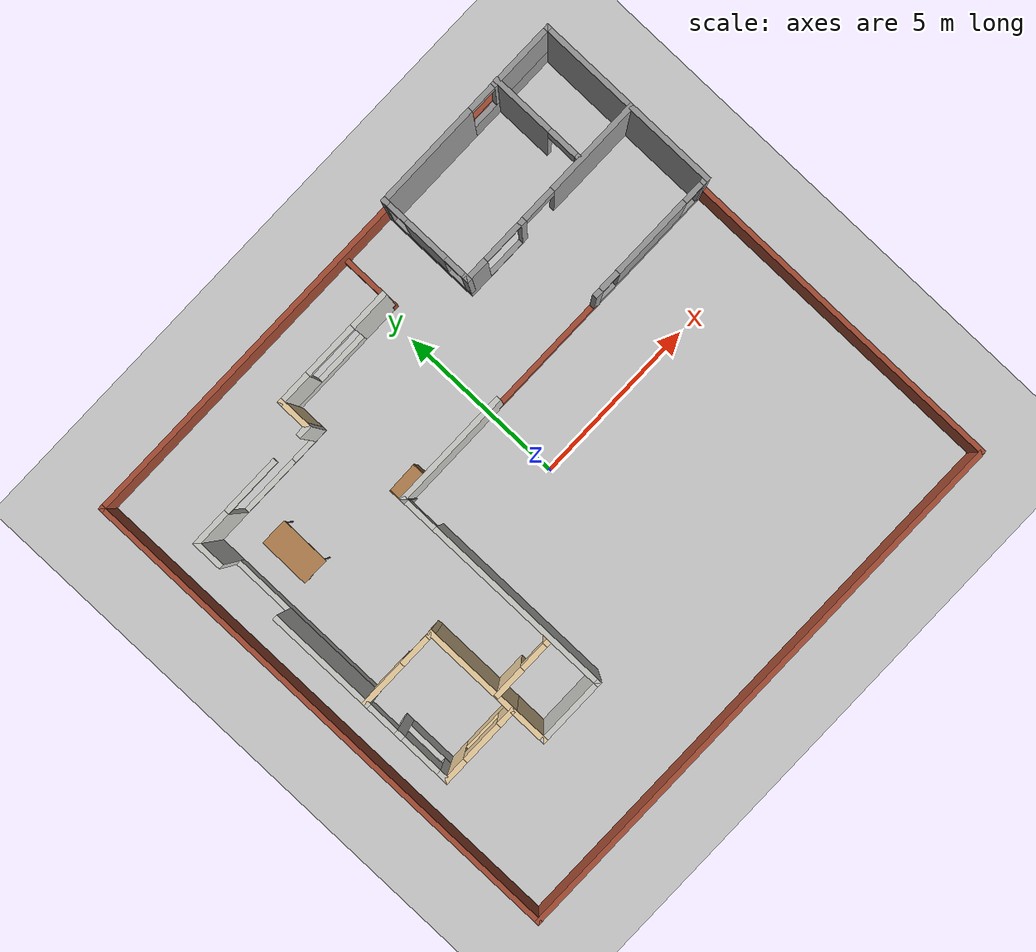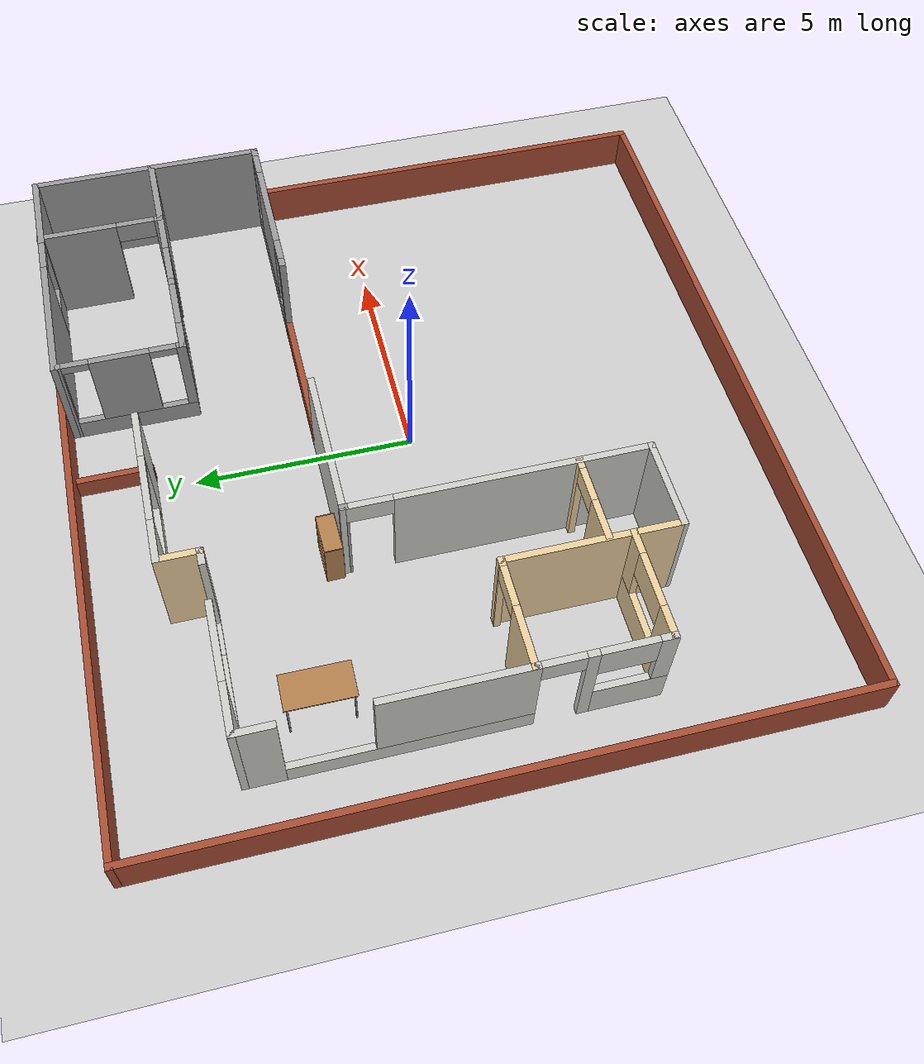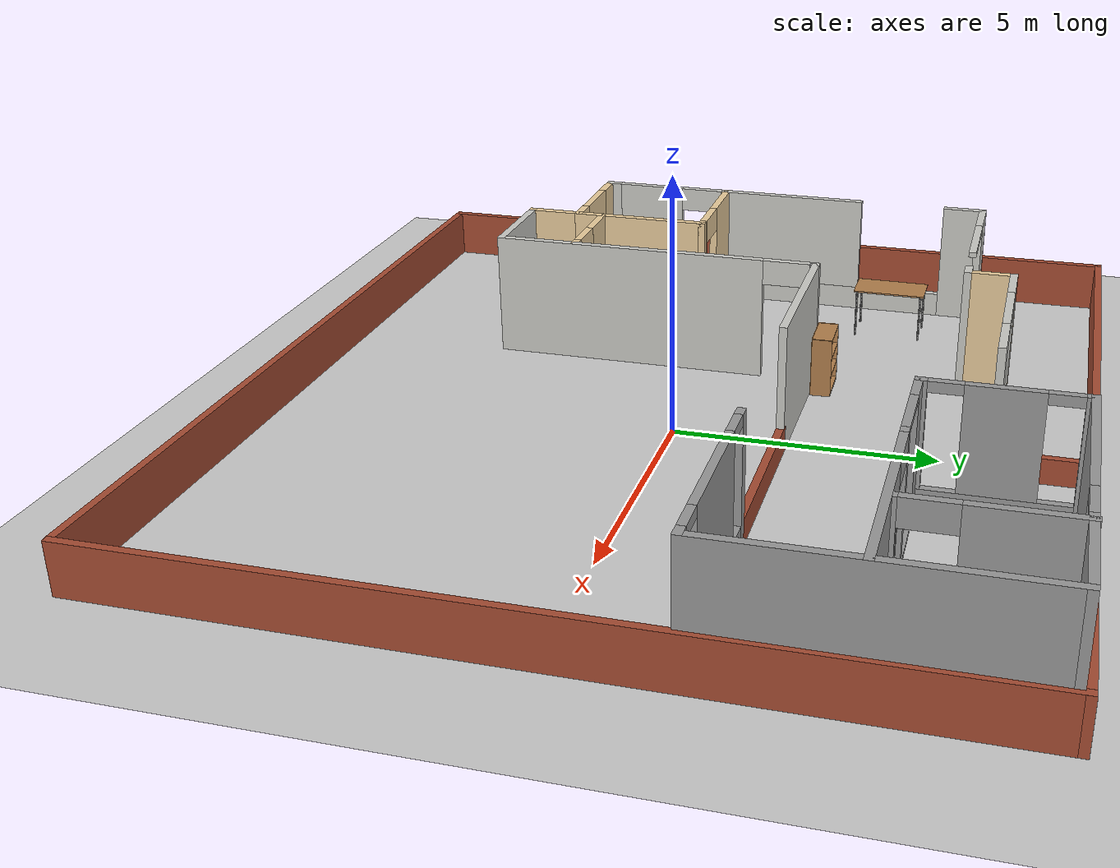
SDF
<sdf version="1.6">
 <world name="default">
  <model name="ground_plane">
   <static>1</static>
   <link name="link">
    <collision name="collision">
     <geometry><plane><normal>0 0 1</normal><size>100 100</size></plane></geometry>
     <surface>
      <contact><collide_bitmask>65535</collide_bitmask></contact>
      <friction><ode><mu>100</mu><mu2>50</mu2></ode></friction>
     </surface>
    </collision>
    <visual name="visual">
     <cast_shadows>0</cast_shadows>
     <geometry><plane><normal>0 0 1</normal><size>100 100</size></plane></geometry>
     <material>
      <script><uri>file://media/materials/scripts/gazebo.material</uri><name>Gazebo/Grey</name></script>
     </material>
    </visual>
   </link>
  </model>
  <model name="pongrut_house">
   <pose>-0.329079 -0.04 0 0 -0 0</pose>
   <link name="Wall_0">
    <collision name="Wall_0_Collision">
     <geometry><box><size>16.7231 0.15 1</size></box></geometry>
     <pose>0 0 0.5 0 -0 0</pose>
    </collision>
    <visual name="Wall_0_Visual">
     <pose>0 0 0.5 0 -0 0</pose>
     <geometry><box><size>16.7231 0.15 1</size></box></geometry>
     <material>
      <script><uri>file://media/materials/scripts/gazebo.material</uri><name>Gazebo/Bricks</name></script>
      <ambient>1 1 1 1</ambient>
     </material>
     <meta><layer>0</layer></meta>
    </visual>
    <pose>0 7.70141 0 0 -0 0</pose>
   </link>
   <link name="Wall_18">
    <pose>-1.19963 5.9806 0 0 -0 3.14149</pose>
    <visual name="Wall_18_Visual_0">
     <pose>-1.31206 0 1.25 0 -0 0</pose>
     <geometry><box><size>1.16383 0.15 2.5</size></box></geometry>
     <material>
      <script><uri>file://media/materials/scripts/gazebo.material</uri><name>Gazebo/CeilingTiled</name></script>
      <ambient>0.921569 0.807843 0.615686 1</ambient>
     </material>
     <meta><layer>0</layer></meta>
    </visual>
    <collision name="Wall_18_Collision_0">
     <geometry><box><size>1.16383 0.15 2.5</size></box></geometry>
     <pose>-1.31206 0 1.25 0 -0 0</pose>
    </collision>
    <visual name="Wall_18_Visual_1">
     <pose>0.581912 0 0.25 0 -0 0</pose>
     <geometry><box><size>2.62412 0.15 0.5</size></box></geometry>
     <material>
      <script><uri>file://media/materials/scripts/gazebo.material</uri><name>Gazebo/CeilingTiled</name></script>
      <ambient>0.921569 0.807843 0.615686 1</ambient>
     </material>
     <meta><layer>0</layer></meta>
    </visual>
    <collision name="Wall_18_Collision_1">
     <geometry><box><size>2.62412 0.15 0.5</size></box></geometry>
     <pose>0.581912 0 0.25 0 -0 0</pose>
    </collision>
    <visual name="Wall_18_Visual_2">
     <pose>1.38191 0 1.5 0 -0 0</pose>
     <geometry><box><size>1.02412 0.15 2</size></box></geometry>
     <material>
      <script><uri>file://media/materials/scripts/gazebo.material</uri><name>Gazebo/CeilingTiled</name></script>
      <ambient>0.921569 0.807843 0.615686 1</ambient>
     </material>
     <meta><layer>0</layer></meta>
    </visual>
    <collision name="Wall_18_Collision_2">
     <geometry><box><size>1.02412 0.15 2</size></box></geometry>
     <pose>1.38191 0 1.5 0 -0 0</pose>
    </collision>
    <visual name="Wall_18_Visual_3">
     <pose>0.069851 0 2.4 0 -0 0</pose>
     <geometry><box><size>1.6 0.15 0.2</size></box></geometry>
     <material>
      <script><uri>file://media/materials/scripts/gazebo.material</uri><name>Gazebo/CeilingTiled</name></script>
      <ambient>0.921569 0.807843 0.615686 1</ambient>
     </material>
     <meta><layer>0</layer></meta>
    </visual>
    <collision name="Wall_18_Collision_3">
     <geometry><box><size>1.6 0.15 0.2</size></box></geometry>
     <pose>0.069851 0 2.4 0 -0 0</pose>
    </collision>
   </link>
   <link name="Wall_22">
    <pose>-6.96881 0.867525 0 0 0 -1.5708</pose>
    <visual name="Wall_22_Visual_0">
     <pose>-3.85377 0 1.25 0 -0 0</pose>
     <geometry><box><size>0.910059 0.15 2.5</size></box></geometry>
     <material>
      <script><uri>file://media/materials/scripts/gazebo.material</uri><name>Gazebo/CeilingTiled</name></script>
      <ambient>0.921569 0.807843 0.615686 1</ambient>
     </material>
     <meta><layer>0</layer></meta>
    </visual>
    <collision name="Wall_22_Collision_0">
     <geometry><box><size>0.910059 0.15 2.5</size></box></geometry>
     <pose>-3.85377 0 1.25 0 -0 0</pose>
    </collision>
    <visual name="Wall_22_Visual_1">
     <pose>2.62377 0 1.25 0 -0 0</pose>
     <geometry><box><size>0.252126 0.15 2.5</size></box></geometry>
     <material>
      <script><uri>file://media/materials/scripts/gazebo.material</uri><name>Gazebo/CeilingTiled</name></script>
      <ambient>0.921569 0.807843 0.615686 1</ambient>
     </material>
     <meta><layer>0</layer></meta>
    </visual>
    <collision name="Wall_22_Collision_1">
     <geometry><box><size>0.252126 0.15 2.5</size></box></geometry>
     <pose>2.62377 0 1.25 0 -0 0</pose>
    </collision>
    <visual name="Wall_22_Visual_2">
     <pose>-0.900517 0 0.25 0 -0 0</pose>
     <geometry><box><size>4.99644 0.15 0.5</size></box></geometry>
     <material>
      <script><uri>file://media/materials/scripts/gazebo.material</uri><name>Gazebo/CeilingTiled</name></script>
      <ambient>0.921569 0.807843 0.615686 1</ambient>
     </material>
     <meta><layer>0</layer></meta>
    </visual>
    <collision name="Wall_22_Collision_2">
     <geometry><box><size>4.99644 0.15 0.5</size></box></geometry>
     <pose>-0.900517 0 0.25 0 -0 0</pose>
    </collision>
    <visual name="Wall_22_Visual_3">
     <pose>3.52931 0 0.45 0 -0 0</pose>
     <geometry><box><size>1.55897 0.15 0.9</size></box></geometry>
     <material>
      <script><uri>file://media/materials/scripts/gazebo.material</uri><name>Gazebo/CeilingTiled</name></script>
      <ambient>0.921569 0.807843 0.615686 1</ambient>
     </material>
     <meta><layer>0</layer></meta>
    </visual>
    <collision name="Wall_22_Collision_3">
     <geometry><box><size>1.55897 0.15 0.9</size></box></geometry>
     <pose>3.52931 0 0.45 0 -0 0</pose>
    </collision>
    <visual name="Wall_22_Visual_4">
     <pose>-0.000517 0 1.5 0 -0 0</pose>
     <geometry><box><size>3.19644 0.15 2</size></box></geometry>
     <material>
      <script><uri>file://media/materials/scripts/gazebo.material</uri><name>Gazebo/CeilingTiled</name></script>
      <ambient>0.921569 0.807843 0.615686 1</ambient>
     </material>
     <meta><layer>0</layer></meta>
    </visual>
    <collision name="Wall_22_Collision_4">
     <geometry><box><size>3.19644 0.15 2</size></box></geometry>
     <pose>-0.000517 0 1.5 0 -0 0</pose>
    </collision>
    <visual name="Wall_22_Visual_5">
     <pose>4.12931 0 1.7 0 -0 0</pose>
     <geometry><box><size>0.358966 0.15 1.6</size></box></geometry>
     <material>
      <script><uri>file://media/materials/scripts/gazebo.material</uri><name>Gazebo/CeilingTiled</name></script>
      <ambient>0.921569 0.807843 0.615686 1</ambient>
     </material>
     <meta><layer>0</layer></meta>
    </visual>
    <collision name="Wall_22_Collision_5">
     <geometry><box><size>0.358966 0.15 1.6</size></box></geometry>
     <pose>4.12931 0 1.7 0 -0 0</pose>
    </collision>
    <visual name="Wall_22_Visual_6">
     <pose>3.34983 0 2.1 0 -0 0</pose>
     <geometry><box><size>1.2 0.15 0.8</size></box></geometry>
     <material>
      <script><uri>file://media/materials/scripts/gazebo.material</uri><name>Gazebo/CeilingTiled</name></script>
      <ambient>0.921569 0.807843 0.615686 1</ambient>
     </material>
     <meta><layer>0</layer></meta>
    </visual>
    <collision name="Wall_22_Collision_6">
     <geometry><box><size>1.2 0.15 0.8</size></box></geometry>
     <pose>3.34983 0 2.1 0 -0 0</pose>
    </collision>
    <visual name="Wall_22_Visual_7">
     <pose>2.0477 0 2.25 0 -0 0</pose>
     <geometry><box><size>0.9 0.15 0.5</size></box></geometry>
     <material>
      <script><uri>file://media/materials/scripts/gazebo.material</uri><name>Gazebo/CeilingTiled</name></script>
      <ambient>0.921569 0.807843 0.615686 1</ambient>
     </material>
     <meta><layer>0</layer></meta>
    </visual>
    <collision name="Wall_22_Collision_7">
     <geometry><box><size>0.9 0.15 0.5</size></box></geometry>
     <pose>2.0477 0 2.25 0 -0 0</pose>
    </collision>
   </link>
   <link name="Wall_26">
    <collision name="Wall_26_Collision">
     <geometry><box><size>1.01188 0.15 2.5</size></box></geometry>
     <pose>0 0 1.25 0 -0 0</pose>
    </collision>
    <visual name="Wall_26_Visual">
     <pose>0 0 1.25 0 -0 0</pose>
     <geometry><box><size>1.01188 0.15 2.5</size></box></geometry>
     <material>
      <script><uri>file://media/materials/scripts/gazebo.material</uri><name>Gazebo/Grey</name></script>
      <ambient>0.921569 0.807843 0.615686 1</ambient>
     </material>
     <meta><layer>0</layer></meta>
    </visual>
    <pose>-3.0188 5.54989 0 0 0 -1.5709</pose>
   </link>
   <link name="Wall_28">
    <pose>-5.79381 -3.36627 0 0 -0 0</pose>
    <visual name="Wall_28_Visual_0">
     <pose>-0.887893 0 1.25 0 -0 0</pose>
     <geometry><box><size>0.724215 0.15 2.5</size></box></geometry>
     <material>
      <script><uri>file://media/materials/scripts/gazebo.material</uri><name>Gazebo/Grey</name></script>
      <ambient>0.921569 0.807843 0.615686 1</ambient>
     </material>
     <meta><layer>0</layer></meta>
    </visual>
    <collision name="Wall_28_Collision_0">
     <geometry><box><size>0.724215 0.15 2.5</size></box></geometry>
     <pose>-0.887893 0 1.25 0 -0 0</pose>
    </collision>
    <visual name="Wall_28_Visual_1">
     <pose>0.362107 0 0.45 0 -0 0</pose>
     <geometry><box><size>1.77578 0.15 0.9</size></box></geometry>
     <material>
      <script><uri>file://media/materials/scripts/gazebo.material</uri><name>Gazebo/Grey</name></script>
      <ambient>0.921569 0.807843 0.615686 1</ambient>
     </material>
     <meta><layer>0</layer></meta>
    </visual>
    <collision name="Wall_28_Collision_1">
     <geometry><box><size>1.77578 0.15 0.9</size></box></geometry>
     <pose>0.362107 0 0.45 0 -0 0</pose>
    </collision>
    <visual name="Wall_28_Visual_2">
     <pose>0.962107 0 1.7 0 -0 0</pose>
     <geometry><box><size>0.575785 0.15 1.6</size></box></geometry>
     <material>
      <script><uri>file://media/materials/scripts/gazebo.material</uri><name>Gazebo/Grey</name></script>
      <ambient>0.921569 0.807843 0.615686 1</ambient>
     </material>
     <meta><layer>0</layer></meta>
    </visual>
    <collision name="Wall_28_Collision_2">
     <geometry><box><size>0.575785 0.15 1.6</size></box></geometry>
     <pose>0.962107 0 1.7 0 -0 0</pose>
    </collision>
    <visual name="Wall_28_Visual_3">
     <pose>0.074215 0 2.1 0 -0 0</pose>
     <geometry><box><size>1.2 0.15 0.8</size></box></geometry>
     <material>
      <script><uri>file://media/materials/scripts/gazebo.material</uri><name>Gazebo/Grey</name></script>
      <ambient>0.921569 0.807843 0.615686 1</ambient>
     </material>
     <meta><layer>0</layer></meta>
    </visual>
    <collision name="Wall_28_Collision_3">
     <geometry><box><size>1.2 0.15 0.8</size></box></geometry>
     <pose>0.074215 0 2.1 0 -0 0</pose>
    </collision>
   </link>
   <link name="Wall_3">
    <collision name="Wall_3_Collision">
     <geometry><box><size>15.5531 0.15 1</size></box></geometry>
     <pose>0 0 0.5 0 -0 0</pose>
    </collision>
    <visual name="Wall_3_Visual">
     <pose>0 0 0.5 0 -0 0</pose>
     <geometry><box><size>15.5531 0.15 1</size></box></geometry>
     <material>
      <script><uri>file://media/materials/scripts/gazebo.material</uri><name>Gazebo/Bricks</name></script>
      <ambient>1 1 1 1</ambient>
     </material>
     <meta><layer>0</layer></meta>
    </visual>
    <pose>-8.2865 -9.3e-05 0 0 0 -1.5708</pose>
   </link>
   <link name="Wall_30">
    <collision name="Wall_30_Collision">
     <geometry><box><size>1.2 0.15 2.5</size></box></geometry>
     <pose>0 0 1.25 0 -0 0</pose>
    </collision>
    <visual name="Wall_30_Visual">
     <pose>0 0 1.25 0 -0 0</pose>
     <geometry><box><size>1.2 0.15 2.5</size></box></geometry>
     <material>
      <script><uri>file://media/materials/scripts/gazebo.material</uri><name>Gazebo/Grey</name></script>
      <ambient>0.921569 0.807843 0.615686 1</ambient>
     </material>
     <meta><layer>0</layer></meta>
    </visual>
    <pose>-4.61881 -3.89127 0 0 0 -1.5708</pose>
   </link>
   <link name="Wall_32">
    <collision name="Wall_32_Collision">
     <geometry><box><size>2.08231 0.15 2.5</size></box></geometry>
     <pose>0 0 1.25 0 -0 0</pose>
    </collision>
    <visual name="Wall_32_Visual">
     <pose>0 0 1.25 0 -0 0</pose>
     <geometry><box><size>2.08231 0.15 2.5</size></box></geometry>
     <material>
      <script><uri>file://media/materials/scripts/gazebo.material</uri><name>Gazebo/CeilingTiled</name></script>
      <ambient>0.921569 0.807843 0.615686 1</ambient>
     </material>
     <meta><layer>0</layer></meta>
    </visual>
    <pose>-3.65266 -4.41643 0 0 0 -0.000168</pose>
   </link>
   <link name="Wall_39">
    <pose>-4.99381 5.10132 0 0 -0 0</pose>
    <visual name="Wall_39_Visual_0">
     <pose>-1.48216 0 1.25 0 -0 0</pose>
     <geometry><box><size>1.13568 0.15 2.5</size></box></geometry>
     <material>
      <script><uri>file://media/materials/scripts/gazebo.material</uri><name>Gazebo/CeilingTiled</name></script>
      <ambient>0.921569 0.807843 0.615686 1</ambient>
     </material>
     <meta><layer>0</layer></meta>
    </visual>
    <collision name="Wall_39_Collision_0">
     <geometry><box><size>1.13568 0.15 2.5</size></box></geometry>
     <pose>-1.48216 0 1.25 0 -0 0</pose>
    </collision>
    <visual name="Wall_39_Visual_1">
     <pose>1.46784 0 0 0 -0 0</pose>
     <geometry><box><size>1.16432 0.15 0.1</size></box></geometry>
     <material>
      <script><uri>file://media/materials/scripts/gazebo.material</uri><name>Gazebo/CeilingTiled</name></script>
      <ambient>0.921569 0.807843 0.615686 1</ambient>
     </material>
     <meta><layer>0</layer></meta>
    </visual>
    <collision name="Wall_39_Collision_1">
     <geometry><box><size>1.16432 0.15 0.1</size></box></geometry>
     <pose>1.46784 0 0 0 -0 0</pose>
    </collision>
    <visual name="Wall_39_Visual_2">
     <pose>1.849 0 1.25 0 -0 0</pose>
     <geometry><box><size>0.401995 0.15 2.5</size></box></geometry>
     <material>
      <script><uri>file://media/materials/scripts/gazebo.material</uri><name>Gazebo/CeilingTiled</name></script>
      <ambient>0.921569 0.807843 0.615686 1</ambient>
     </material>
     <meta><layer>0</layer></meta>
    </visual>
    <collision name="Wall_39_Collision_2">
     <geometry><box><size>0.401995 0.15 2.5</size></box></geometry>
     <pose>1.849 0 1.25 0 -0 0</pose>
    </collision>
    <visual name="Wall_39_Visual_3">
     <pose>-0.014321 0 0 0 -0 0</pose>
     <geometry><box><size>1.8 0.15 0.1</size></box></geometry>
     <material>
      <script><uri>file://media/materials/scripts/gazebo.material</uri><name>Gazebo/CeilingTiled</name></script>
      <ambient>0.921569 0.807843 0.615686 1</ambient>
     </material>
     <meta><layer>0</layer></meta>
    </visual>
    <collision name="Wall_39_Collision_3">
     <geometry><box><size>1.8 0.15 0.1</size></box></geometry>
     <pose>-0.014321 0 0 0 -0 0</pose>
    </collision>
    <visual name="Wall_39_Visual_4">
     <pose>1.849 0 1.25 0 -0 0</pose>
     <geometry><box><size>0.401995 0.15 2.5</size></box></geometry>
     <material>
      <script><uri>file://media/materials/scripts/gazebo.material</uri><name>Gazebo/CeilingTiled</name></script>
      <ambient>0.921569 0.807843 0.615686 1</ambient>
     </material>
     <meta><layer>0</layer></meta>
    </visual>
    <collision name="Wall_39_Collision_4">
     <geometry><box><size>0.401995 0.15 2.5</size></box></geometry>
     <pose>1.849 0 1.25 0 -0 0</pose>
    </collision>
    <visual name="Wall_39_Visual_5">
     <pose>-0.033158 0 2.45 0 -0 0</pose>
     <geometry><box><size>1.76233 0.15 0.1</size></box></geometry>
     <material>
      <script><uri>file://media/materials/scripts/gazebo.material</uri><name>Gazebo/CeilingTiled</name></script>
      <ambient>0.921569 0.807843 0.615686 1</ambient>
     </material>
     <meta><layer>0</layer></meta>
    </visual>
    <collision name="Wall_39_Collision_5">
     <geometry><box><size>1.76233 0.15 0.1</size></box></geometry>
     <pose>-0.033158 0 2.45 0 -0 0</pose>
    </collision>
   </link>
   <link name="Wall_45">
    <pose>-2.6865 -1.12509 0 0 -0 1.5708</pose>
    <visual name="Wall_45_Visual_0">
     <pose>-0.565074 0 1.25 0 -0 0</pose>
     <geometry><box><size>5.60285 0.15 2.5</size></box></geometry>
     <material>
      <script><uri>file://media/materials/scripts/gazebo.material</uri><name>Gazebo/CeilingTiled</name></script>
      <ambient>0.921569 0.807843 0.615686 1</ambient>
     </material>
     <meta><layer>0</layer></meta>
    </visual>
    <collision name="Wall_45_Collision_0">
     <geometry><box><size>5.60285 0.15 2.5</size></box></geometry>
     <pose>-0.565074 0 1.25 0 -0 0</pose>
    </collision>
    <visual name="Wall_45_Visual_1">
     <pose>3.30143 0 1.25 0 -0 0</pose>
     <geometry><box><size>0.130149 0.15 2.5</size></box></geometry>
     <material>
      <script><uri>file://media/materials/scripts/gazebo.material</uri><name>Gazebo/CeilingTiled</name></script>
      <ambient>0.921569 0.807843 0.615686 1</ambient>
     </material>
     <meta><layer>0</layer></meta>
    </visual>
    <collision name="Wall_45_Collision_1">
     <geometry><box><size>0.130149 0.15 2.5</size></box></geometry>
     <pose>3.30143 0 1.25 0 -0 0</pose>
    </collision>
    <visual name="Wall_45_Visual_2">
     <pose>2.73635 0 2.25 0 -0 0</pose>
     <geometry><box><size>1 0.15 0.5</size></box></geometry>
     <material>
      <script><uri>file://media/materials/scripts/gazebo.material</uri><name>Gazebo/CeilingTiled</name></script>
      <ambient>0.921569 0.807843 0.615686 1</ambient>
     </material>
     <meta><layer>0</layer></meta>
    </visual>
    <collision name="Wall_45_Collision_2">
     <geometry><box><size>1 0.15 0.5</size></box></geometry>
     <pose>2.73635 0 2.25 0 -0 0</pose>
    </collision>
   </link>
   <link name="Wall_5">
    <collision name="Wall_5_Collision">
     <geometry><box><size>15.5374 0.15 1</size></box></geometry>
     <pose>0 0 0.5 0 -0 0</pose>
    </collision>
    <visual name="Wall_5_Visual">
     <pose>0 0 0.5 0 -0 0</pose>
     <geometry><box><size>15.5374 0.15 1</size></box></geometry>
     <material>
      <script><uri>file://media/materials/scripts/gazebo.material</uri><name>Gazebo/Bricks</name></script>
      <ambient>1 1 1 1</ambient>
     </material>
     <meta><layer>0</layer></meta>
    </visual>
    <pose>8.2865 0.007907 0 0 0 -1.5708</pose>
   </link>
   <link name="Wall_54">
    <collision name="Wall_54_Collision">
     <geometry><box><size>0.186 0.15 2.5</size></box></geometry>
     <pose>0 0 1.25 0 -0 0</pose>
    </collision>
    <visual name="Wall_54_Visual">
     <pose>0 0 1.25 0 -0 0</pose>
     <geometry><box><size>0.186 0.15 2.5</size></box></geometry>
     <material>
      <script><uri>file://media/materials/scripts/gazebo.material</uri><name>Gazebo/Grey</name></script>
      <ambient>1 1 1 1</ambient>
     </material>
     <meta><layer>0</layer></meta>
    </visual>
    <pose>-2.6865 2.14841 0 0 0 -1.5708</pose>
   </link>
   <link name="Wall_59">
    <collision name="Wall_59_Collision">
     <geometry><box><size>3.5 0.15 2.5</size></box></geometry>
     <pose>0 0 1.25 0 -0 0</pose>
    </collision>
    <visual name="Wall_59_Visual">
     <pose>0 0 1.25 0 -0 0</pose>
     <geometry><box><size>3.5 0.15 2.5</size></box></geometry>
     <material>
      <script><uri>file://media/materials/scripts/gazebo.material</uri><name>Gazebo/CeilingTiled</name></script>
      <ambient>0.921569 0.807843 0.615686 1</ambient>
     </material>
     <meta><layer>0</layer></meta>
    </visual>
    <pose>-1.0115 2.16641 0 0 -0 0</pose>
   </link>
   <link name="Wall_62">
    <collision name="Wall_62_Collision">
     <geometry><box><size>2.9 0.15 2.5</size></box></geometry>
     <pose>0 0 1.25 0 -0 0</pose>
    </collision>
    <visual name="Wall_62_Visual">
     <pose>0 0 1.25 0 -0 0</pose>
     <geometry><box><size>2.9 0.15 2.5</size></box></geometry>
     <material>
      <script><uri>file://media/materials/scripts/gazebo.material</uri><name>Gazebo/Grey</name></script>
      <ambient>0.921569 0.807843 0.615686 1</ambient>
     </material>
     <meta><layer>0</layer></meta>
    </visual>
    <pose>-4.61881 -1.99127 0 0 -0 1.5708</pose>
   </link>
   <link name="Wall_64">
    <pose>-5.79381 -0.616269 0 0 -0 3.14159</pose>
    <visual name="Wall_64_Visual_0">
     <pose>-1.14338 0 1.25 0 -0 0</pose>
     <geometry><box><size>0.213234 0.15 2.5</size></box></geometry>
     <material>
      <script><uri>file://media/materials/scripts/gazebo.material</uri><name>Gazebo/Grey</name></script>
      <ambient>0.921569 0.807843 0.615686 1</ambient>
     </material>
     <meta><layer>0</layer></meta>
    </visual>
    <collision name="Wall_64_Collision_0">
     <geometry><box><size>0.213234 0.15 2.5</size></box></geometry>
     <pose>-1.14338 0 1.25 0 -0 0</pose>
    </collision>
    <visual name="Wall_64_Visual_1">
     <pose>0.556617 0 1.25 0 -0 0</pose>
     <geometry><box><size>1.38677 0.15 2.5</size></box></geometry>
     <material>
      <script><uri>file://media/materials/scripts/gazebo.material</uri><name>Gazebo/Grey</name></script>
      <ambient>0.921569 0.807843 0.615686 1</ambient>
     </material>
     <meta><layer>0</layer></meta>
    </visual>
    <collision name="Wall_64_Collision_1">
     <geometry><box><size>1.38677 0.15 2.5</size></box></geometry>
     <pose>0.556617 0 1.25 0 -0 0</pose>
    </collision>
    <visual name="Wall_64_Visual_2">
     <pose>-0.586766 0 2.25 0 -0 0</pose>
     <geometry><box><size>0.9 0.15 0.5</size></box></geometry>
     <material>
      <script><uri>file://media/materials/scripts/gazebo.material</uri><name>Gazebo/Grey</name></script>
      <ambient>0.921569 0.807843 0.615686 1</ambient>
     </material>
     <meta><layer>0</layer></meta>
    </visual>
    <collision name="Wall_64_Collision_2">
     <geometry><box><size>0.9 0.15 0.5</size></box></geometry>
     <pose>-0.586766 0 2.25 0 -0 0</pose>
    </collision>
   </link>
   <link name="Wall_7">
    <collision name="Wall_7_Collision">
     <geometry><box><size>16.653 0.15 1</size></box></geometry>
     <pose>0 0 0.5 0 -0 0</pose>
    </collision>
    <visual name="Wall_7_Visual">
     <pose>0 0 0.5 0 -0 0</pose>
     <geometry><box><size>16.653 0.15 1</size></box></geometry>
     <material>
      <script><uri>file://media/materials/scripts/gazebo.material</uri><name>Gazebo/Bricks</name></script>
      <ambient>1 1 1 1</ambient>
     </material>
     <meta><layer>0</layer></meta>
    </visual>
    <pose>-0.035 -7.70159 0 0 -0 0</pose>
   </link>
   <link name="Wall_72">
    <pose>6.2085 2.16641 0 0 -0 0</pose>
    <visual name="Wall_72_Visual_0">
     <pose>-1.93039 0 1.25 0 -0 0</pose>
     <geometry><box><size>0.239214 0.15 2.5</size></box></geometry>
     <material>
      <script><uri>file://media/materials/scripts/gazebo.material</uri><name>Gazebo/Grey</name></script>
      <ambient>0.372549 0.372549 0.372549 1</ambient>
     </material>
     <meta><layer>0</layer></meta>
    </visual>
    <collision name="Wall_72_Collision_0">
     <geometry><box><size>0.239214 0.15 2.5</size></box></geometry>
     <pose>-1.93039 0 1.25 0 -0 0</pose>
    </collision>
    <visual name="Wall_72_Visual_1">
     <pose>0.119607 0 0.25 0 -0 0</pose>
     <geometry><box><size>3.86079 0.15 0.5</size></box></geometry>
     <material>
      <script><uri>file://media/materials/scripts/gazebo.material</uri><name>Gazebo/Grey</name></script>
      <ambient>0.372549 0.372549 0.372549 1</ambient>
     </material>
     <meta><layer>0</layer></meta>
    </visual>
    <collision name="Wall_72_Collision_1">
     <geometry><box><size>3.86079 0.15 0.5</size></box></geometry>
     <pose>0.119607 0 0.25 0 -0 0</pose>
    </collision>
    <visual name="Wall_72_Visual_2">
     <pose>-0.013929 0 1.5 0 -0 0</pose>
     <geometry><box><size>2.39371 0.15 2</size></box></geometry>
     <material>
      <script><uri>file://media/materials/scripts/gazebo.material</uri><name>Gazebo/Grey</name></script>
      <ambient>0.372549 0.372549 0.372549 1</ambient>
     </material>
     <meta><layer>0</layer></meta>
    </visual>
    <collision name="Wall_72_Collision_2">
     <geometry><box><size>2.39371 0.15 2</size></box></geometry>
     <pose>-0.013929 0 1.5 0 -0 0</pose>
    </collision>
    <visual name="Wall_72_Visual_3">
     <pose>1.91646 0 1.5 0 -0 0</pose>
     <geometry><box><size>0.267073 0.15 2</size></box></geometry>
     <material>
      <script><uri>file://media/materials/scripts/gazebo.material</uri><name>Gazebo/Grey</name></script>
      <ambient>0.372549 0.372549 0.372549 1</ambient>
     </material>
     <meta><layer>0</layer></meta>
    </visual>
    <collision name="Wall_72_Collision_3">
     <geometry><box><size>0.267073 0.15 2</size></box></geometry>
     <pose>1.91646 0 1.5 0 -0 0</pose>
    </collision>
    <visual name="Wall_72_Visual_4">
     <pose>-1.51079 0 2.4 0 -0 0</pose>
     <geometry><box><size>0.6 0.15 0.2</size></box></geometry>
     <material>
      <script><uri>file://media/materials/scripts/gazebo.material</uri><name>Gazebo/Grey</name></script>
      <ambient>0.372549 0.372549 0.372549 1</ambient>
     </material>
     <meta><layer>0</layer></meta>
    </visual>
    <collision name="Wall_72_Collision_4">
     <geometry><box><size>0.6 0.15 0.2</size></box></geometry>
     <pose>-1.51079 0 2.4 0 -0 0</pose>
    </collision>
    <visual name="Wall_72_Visual_5">
     <pose>1.48293 0 2.4 0 -0 0</pose>
     <geometry><box><size>0.6 0.15 0.2</size></box></geometry>
     <material>
      <script><uri>file://media/materials/scripts/gazebo.material</uri><name>Gazebo/Grey</name></script>
      <ambient>0.372549 0.372549 0.372549 1</ambient>
     </material>
     <meta><layer>0</layer></meta>
    </visual>
    <collision name="Wall_72_Collision_5">
     <geometry><box><size>0.6 0.15 0.2</size></box></geometry>
     <pose>1.48293 0 2.4 0 -0 0</pose>
    </collision>
   </link>
   <link name="Wall_76">
    <pose>5.2585 7.55141 0 0 -0 0</pose>
    <visual name="Wall_76_Visual_0">
     <pose>-1.42413 0 1.25 0 -0 0</pose>
     <geometry><box><size>3.15174 0.15 2.5</size></box></geometry>
     <material>
      <script><uri>file://media/materials/scripts/gazebo.material</uri><name>Gazebo/Grey</name></script>
      <ambient>0.372549 0.372549 0.372549 1</ambient>
     </material>
     <meta><layer>0</layer></meta>
    </visual>
    <collision name="Wall_76_Collision_0">
     <geometry><box><size>3.15174 0.15 2.5</size></box></geometry>
     <pose>-1.42413 0 1.25 0 -0 0</pose>
    </collision>
    <visual name="Wall_76_Visual_1">
     <pose>1.57587 0 0.45 0 -0 0</pose>
     <geometry><box><size>2.84826 0.15 0.9</size></box></geometry>
     <material>
      <script><uri>file://media/materials/scripts/gazebo.material</uri><name>Gazebo/Grey</name></script>
      <ambient>0.372549 0.372549 0.372549 1</ambient>
     </material>
     <meta><layer>0</layer></meta>
    </visual>
    <collision name="Wall_76_Collision_1">
     <geometry><box><size>2.84826 0.15 0.9</size></box></geometry>
     <pose>1.57587 0 0.45 0 -0 0</pose>
    </collision>
    <visual name="Wall_76_Visual_2">
     <pose>1.97587 0 1.7 0 -0 0</pose>
     <geometry><box><size>2.04826 0.15 1.6</size></box></geometry>
     <material>
      <script><uri>file://media/materials/scripts/gazebo.material</uri><name>Gazebo/Grey</name></script>
      <ambient>0.372549 0.372549 0.372549 1</ambient>
     </material>
     <meta><layer>0</layer></meta>
    </visual>
    <collision name="Wall_76_Collision_2">
     <geometry><box><size>2.04826 0.15 1.6</size></box></geometry>
     <pose>1.97587 0 1.7 0 -0 0</pose>
    </collision>
    <visual name="Wall_76_Visual_3">
     <pose>0.551743 0 2.4 0 -0 0</pose>
     <geometry><box><size>0.8 0.15 0.2</size></box></geometry>
     <material>
      <script><uri>file://media/materials/scripts/gazebo.material</uri><name>Gazebo/Grey</name></script>
      <ambient>0.372549 0.372549 0.372549 1</ambient>
     </material>
     <meta><layer>0</layer></meta>
    </visual>
    <collision name="Wall_76_Collision_3">
     <geometry><box><size>0.8 0.15 0.2</size></box></geometry>
     <pose>0.551743 0 2.4 0 -0 0</pose>
    </collision>
   </link>
   <link name="Wall_78">
    <collision name="Wall_78_Collision">
     <geometry><box><size>5.53521 0.15 2.5</size></box></geometry>
     <pose>0 0 1.25 0 -0 0</pose>
    </collision>
    <visual name="Wall_78_Visual">
     <pose>0 0 1.25 0 -0 0</pose>
     <geometry><box><size>5.53521 0.15 2.5</size></box></geometry>
     <material>
      <script><uri>file://media/materials/scripts/gazebo.material</uri><name>Gazebo/Grey</name></script>
      <ambient>0.372549 0.372549 0.372549 1</ambient>
     </material>
     <meta><layer>0</layer></meta>
    </visual>
    <pose>8.1835 4.85891 0 0 -0 1.5708</pose>
   </link>
   <link name="Wall_80">
    <collision name="Wall_80_Collision">
     <geometry><box><size>1.75 0.15 0.5</size></box></geometry>
     <pose>0 0 0.25 0 -0 0</pose>
    </collision>
    <visual name="Wall_80_Visual">
     <pose>0 0 0.25 0 -0 0</pose>
     <geometry><box><size>1.75 0.15 0.5</size></box></geometry>
     <material>
      <script><uri>file://media/materials/scripts/gazebo.material</uri><name>Gazebo/Bricks</name></script>
      <ambient>1 1 1 1</ambient>
     </material>
     <meta><layer>0</layer></meta>
    </visual>
    <pose>0.6635 6.76641 0 0 -0 1.5708</pose>
   </link>
   <link name="Wall_82">
    <collision name="Wall_82_Collision">
     <geometry><box><size>3.72 0.15 0.5</size></box></geometry>
     <pose>0 0 0.25 0 -0 0</pose>
    </collision>
    <visual name="Wall_82_Visual">
     <pose>0 0 0.25 0 -0 0</pose>
     <geometry><box><size>3.72 0.15 0.5</size></box></geometry>
     <material>
      <script><uri>file://media/materials/scripts/gazebo.material</uri><name>Gazebo/Bricks</name></script>
      <ambient>1 1 1 1</ambient>
     </material>
     <meta><layer>0</layer></meta>
    </visual>
    <pose>2.4485 2.16641 0 0 -0 0</pose>
   </link>
   <link name="Wall_84">
    <pose>5.2585 4.73441 0 0 -0 0</pose>
    <visual name="Wall_84_Visual_0">
     <pose>-2.63758 0 1.25 0 -0 0</pose>
     <geometry><box><size>0.724843 0.15 2.5</size></box></geometry>
     <material>
      <script><uri>file://media/materials/scripts/gazebo.material</uri><name>Gazebo/Grey</name></script>
      <ambient>0.372549 0.372549 0.372549 1</ambient>
     </material>
     <meta><layer>0</layer></meta>
    </visual>
    <collision name="Wall_84_Collision_0">
     <geometry><box><size>0.724843 0.15 2.5</size></box></geometry>
     <pose>-2.63758 0 1.25 0 -0 0</pose>
    </collision>
    <visual name="Wall_84_Visual_1">
     <pose>-0.983144 0 1.25 0 -0 0</pose>
     <geometry><box><size>0.184025 0.15 2.5</size></box></geometry>
     <material>
      <script><uri>file://media/materials/scripts/gazebo.material</uri><name>Gazebo/Grey</name></script>
      <ambient>0.372549 0.372549 0.372549 1</ambient>
     </material>
     <meta><layer>0</layer></meta>
    </visual>
    <collision name="Wall_84_Collision_1">
     <geometry><box><size>0.184025 0.15 2.5</size></box></geometry>
     <pose>-0.983144 0 1.25 0 -0 0</pose>
    </collision>
    <visual name="Wall_84_Visual_2">
     <pose>1.55443 0 1.25 0 -0 0</pose>
     <geometry><box><size>2.89113 0.15 2.5</size></box></geometry>
     <material>
      <script><uri>file://media/materials/scripts/gazebo.material</uri><name>Gazebo/Grey</name></script>
      <ambient>0.372549 0.372549 0.372549 1</ambient>
     </material>
     <meta><layer>0</layer></meta>
    </visual>
    <collision name="Wall_84_Collision_2">
     <geometry><box><size>2.89113 0.15 2.5</size></box></geometry>
     <pose>1.55443 0 1.25 0 -0 0</pose>
    </collision>
    <visual name="Wall_84_Visual_3">
     <pose>-1.67516 0 0 0 -0 0</pose>
     <geometry><box><size>1.2 0.15 0.1</size></box></geometry>
     <material>
      <script><uri>file://media/materials/scripts/gazebo.material</uri><name>Gazebo/Grey</name></script>
      <ambient>0.372549 0.372549 0.372549 1</ambient>
     </material>
     <meta><layer>0</layer></meta>
    </visual>
    <collision name="Wall_84_Collision_3">
     <geometry><box><size>1.2 0.15 0.1</size></box></geometry>
     <pose>-1.67516 0 0 0 -0 0</pose>
    </collision>
    <visual name="Wall_84_Visual_4">
     <pose>-0.391131 0 2.25 0 -0 0</pose>
     <geometry><box><size>1 0.15 0.5</size></box></geometry>
     <material>
      <script><uri>file://media/materials/scripts/gazebo.material</uri><name>Gazebo/Grey</name></script>
      <ambient>0.372549 0.372549 0.372549 1</ambient>
     </material>
     <meta><layer>0</layer></meta>
    </visual>
    <collision name="Wall_84_Collision_4">
     <geometry><box><size>1 0.15 0.5</size></box></geometry>
     <pose>-0.391131 0 2.25 0 -0 0</pose>
    </collision>
    <visual name="Wall_84_Visual_5">
     <pose>-1.67516 0 2.45 0 -0 0</pose>
     <geometry><box><size>1.2 0.15 0.1</size></box></geometry>
     <material>
      <script><uri>file://media/materials/scripts/gazebo.material</uri><name>Gazebo/Grey</name></script>
      <ambient>0.372549 0.372549 0.372549 1</ambient>
     </material>
     <meta><layer>0</layer></meta>
    </visual>
    <collision name="Wall_84_Collision_5">
     <geometry><box><size>1.2 0.15 0.1</size></box></geometry>
     <pose>-1.67516 0 2.45 0 -0 0</pose>
    </collision>
   </link>
   <link name="Wall_90">
    <pose>2.3335 6.14291 0 0 0 -1.5708</pose>
    <visual name="Wall_90_Visual_0">
     <pose>-1.3767 0 1.25 0 -0 0</pose>
     <geometry><box><size>0.213607 0.15 2.5</size></box></geometry>
     <material>
      <script><uri>file://media/materials/scripts/gazebo.material</uri><name>Gazebo/Grey</name></script>
      <ambient>0.372549 0.372549 0.372549 1</ambient>
     </material>
     <meta><layer>0</layer></meta>
    </visual>
    <collision name="Wall_90_Collision_0">
     <geometry><box><size>0.213607 0.15 2.5</size></box></geometry>
     <pose>-1.3767 0 1.25 0 -0 0</pose>
    </collision>
    <visual name="Wall_90_Visual_1">
     <pose>0.106804 0 0.25 0 -0 0</pose>
     <geometry><box><size>2.75339 0.15 0.5</size></box></geometry>
     <material>
      <script><uri>file://media/materials/scripts/gazebo.material</uri><name>Gazebo/Grey</name></script>
      <ambient>0.372549 0.372549 0.372549 1</ambient>
     </material>
     <meta><layer>0</layer></meta>
    </visual>
    <collision name="Wall_90_Collision_1">
     <geometry><box><size>2.75339 0.15 0.5</size></box></geometry>
     <pose>0.106804 0 0.25 0 -0 0</pose>
    </collision>
    <visual name="Wall_90_Visual_2">
     <pose>-0.002477 0 1.5 0 -0 0</pose>
     <geometry><box><size>1.33483 0.15 2</size></box></geometry>
     <material>
      <script><uri>file://media/materials/scripts/gazebo.material</uri><name>Gazebo/Grey</name></script>
      <ambient>0.372549 0.372549 0.372549 1</ambient>
     </material>
     <meta><layer>0</layer></meta>
    </visual>
    <collision name="Wall_90_Collision_2">
     <geometry><box><size>1.33483 0.15 2</size></box></geometry>
     <pose>-0.002477 0 1.5 0 -0 0</pose>
    </collision>
    <visual name="Wall_90_Visual_3">
     <pose>1.37422 0 1.5 0 -0 0</pose>
     <geometry><box><size>0.218561 0.15 2</size></box></geometry>
     <material>
      <script><uri>file://media/materials/scripts/gazebo.material</uri><name>Gazebo/Grey</name></script>
      <ambient>0.372549 0.372549 0.372549 1</ambient>
     </material>
     <meta><layer>0</layer></meta>
    </visual>
    <collision name="Wall_90_Collision_3">
     <geometry><box><size>0.218561 0.15 2</size></box></geometry>
     <pose>1.37422 0 1.5 0 -0 0</pose>
    </collision>
    <visual name="Wall_90_Visual_4">
     <pose>-0.969893 0 2.4 0 -0 0</pose>
     <geometry><box><size>0.6 0.15 0.2</size></box></geometry>
     <material>
      <script><uri>file://media/materials/scripts/gazebo.material</uri><name>Gazebo/Grey</name></script>
      <ambient>0.372549 0.372549 0.372549 1</ambient>
     </material>
     <meta><layer>0</layer></meta>
    </visual>
    <collision name="Wall_90_Collision_4">
     <geometry><box><size>0.6 0.15 0.2</size></box></geometry>
     <pose>-0.969893 0 2.4 0 -0 0</pose>
    </collision>
    <visual name="Wall_90_Visual_5">
     <pose>0.964939 0 2.4 0 -0 0</pose>
     <geometry><box><size>0.6 0.15 0.2</size></box></geometry>
     <material>
      <script><uri>file://media/materials/scripts/gazebo.material</uri><name>Gazebo/Grey</name></script>
      <ambient>0.372549 0.372549 0.372549 1</ambient>
     </material>
     <meta><layer>0</layer></meta>
    </visual>
    <collision name="Wall_90_Collision_5">
     <geometry><box><size>0.6 0.15 0.2</size></box></geometry>
     <pose>0.964939 0 2.4 0 -0 0</pose>
    </collision>
   </link>
   <link name="Wall_95">
    <pose>6.3835 6.16091 0 0 -0 1.5708</pose>
    <visual name="Wall_95_Visual_0">
     <pose>-1.38096 0 1.25 0 -0 0</pose>
     <geometry><box><size>0.205071 0.15 2.5</size></box></geometry>
     <material>
      <script><uri>file://media/materials/scripts/gazebo.material</uri><name>Gazebo/Grey</name></script>
      <ambient>0.372549 0.372549 0.372549 1</ambient>
     </material>
     <meta><layer>0</layer></meta>
    </visual>
    <collision name="Wall_95_Collision_0">
     <geometry><box><size>0.205071 0.15 2.5</size></box></geometry>
     <pose>-1.38096 0 1.25 0 -0 0</pose>
    </collision>
    <visual name="Wall_95_Visual_1">
     <pose>0.552535 0 1.25 0 -0 0</pose>
     <geometry><box><size>1.86193 0.15 2.5</size></box></geometry>
     <material>
      <script><uri>file://media/materials/scripts/gazebo.material</uri><name>Gazebo/Grey</name></script>
      <ambient>0.372549 0.372549 0.372549 1</ambient>
     </material>
     <meta><layer>0</layer></meta>
    </visual>
    <collision name="Wall_95_Collision_1">
     <geometry><box><size>1.86193 0.15 2.5</size></box></geometry>
     <pose>0.552535 0 1.25 0 -0 0</pose>
    </collision>
    <visual name="Wall_95_Visual_2">
     <pose>-0.828429 0 2.25 0 -0 0</pose>
     <geometry><box><size>0.9 0.15 0.5</size></box></geometry>
     <material>
      <script><uri>file://media/materials/scripts/gazebo.material</uri><name>Gazebo/Grey</name></script>
      <ambient>0.372549 0.372549 0.372549 1</ambient>
     </material>
     <meta><layer>0</layer></meta>
    </visual>
    <collision name="Wall_95_Collision_2">
     <geometry><box><size>0.9 0.15 0.5</size></box></geometry>
     <pose>-0.828429 0 2.25 0 -0 0</pose>
    </collision>
   </link>
   <link name="Wall_97">
    <pose>-3.65498 -2.83886 0 0 -0 0</pose>
    <visual name="Wall_97_Visual_0">
     <pose>-0.525325 0 1.25 0 -0 0</pose>
     <geometry><box><size>0.949351 0.15 2.5</size></box></geometry>
     <material>
      <script><uri>file://media/materials/scripts/gazebo.material</uri><name>Gazebo/Grey</name></script>
      <ambient>0.921569 0.807843 0.615686 1</ambient>
     </material>
     <meta><layer>0</layer></meta>
    </visual>
    <collision name="Wall_97_Collision_0">
     <geometry><box><size>0.949351 0.15 2.5</size></box></geometry>
     <pose>-0.525325 0 1.25 0 -0 0</pose>
    </collision>
    <visual name="Wall_97_Visual_1">
     <pose>0.874675 0 1.25 0 -0 0</pose>
     <geometry><box><size>0.250649 0.15 2.5</size></box></geometry>
     <material>
      <script><uri>file://media/materials/scripts/gazebo.material</uri><name>Gazebo/Grey</name></script>
      <ambient>0.921569 0.807843 0.615686 1</ambient>
     </material>
     <meta><layer>0</layer></meta>
    </visual>
    <collision name="Wall_97_Collision_1">
     <geometry><box><size>0.250649 0.15 2.5</size></box></geometry>
     <pose>0.874675 0 1.25 0 -0 0</pose>
    </collision>
    <visual name="Wall_97_Visual_2">
     <pose>0.349351 0 2.25 0 -0 0</pose>
     <geometry><box><size>0.8 0.15 0.5</size></box></geometry>
     <material>
      <script><uri>file://media/materials/scripts/gazebo.material</uri><name>Gazebo/Grey</name></script>
      <ambient>0.921569 0.807843 0.615686 1</ambient>
     </material>
     <meta><layer>0</layer></meta>
    </visual>
    <collision name="Wall_97_Collision_2">
     <geometry><box><size>0.8 0.15 0.5</size></box></geometry>
     <pose>0.349351 0 2.25 0 -0 0</pose>
    </collision>
   </link>
   <static>1</static>
  </model>
  <model name="bookshelf">
   <static>1</static>
   <link name="link">
    <inertial><mass>1</mass></inertial>
    <collision name="back">
     <pose>0 0.005 0.6 0 -0 0</pose>
     <geometry><box><size>0.9 0.01 1.2</size></box></geometry>
    </collision>
    <visual name="visual1">
     <pose>0 0.005 0.6 0 -0 0</pose>
     <geometry><box><size>0.9 0.01 1.2</size></box></geometry>
     <material>
      <script><uri>file://media/materials/scripts/gazebo.material</uri><name>Gazebo/Wood</name></script>
     </material>
    </visual>
    <collision name="left_side">
     <pose>0.45 -0.195 0.6 0 -0 0</pose>
     <geometry><box><size>0.02 0.4 1.2</size></box></geometry>
    </collision>
    <visual name="visual2">
     <pose>0.45 -0.195 0.6 0 -0 0</pose>
     <geometry><box><size>0.02 0.4 1.2</size></box></geometry>
     <material>
      <script><uri>file://media/materials/scripts/gazebo.material</uri><name>Gazebo/Wood</name></script>
     </material>
    </visual>
    <collision name="right_side">
     <pose>-0.45 -0.195 0.6 0 -0 0</pose>
     <geometry><box><size>0.02 0.4 1.2</size></box></geometry>
    </collision>
    <visual name="visual3">
     <pose>-0.45 -0.195 0.6 0 -0 0</pose>
     <geometry><box><size>0.02 0.4 1.2</size></box></geometry>
     <material>
      <script><uri>file://media/materials/scripts/gazebo.material</uri><name>Gazebo/Wood</name></script>
     </material>
    </visual>
    <collision name="bottom">
     <pose>0 -0.195 0.03 0 -0 0</pose>
     <geometry><box><size>0.88 0.4 0.06</size></box></geometry>
    </collision>
    <visual name="visual4">
     <pose>0 -0.195 0.03 0 -0 0</pose>
     <geometry><box><size>0.88 0.4 0.06</size></box></geometry>
     <material>
      <script><uri>file://media/materials/scripts/gazebo.material</uri><name>Gazebo/Wood</name></script>
     </material>
    </visual>
    <collision name="top">
     <pose>0 -0.195 1.19 0 -0 0</pose>
     <geometry><box><size>0.88 0.4 0.02</size></box></geometry>
    </collision>
    <visual name="visual5">
     <pose>0 -0.195 1.19 0 -0 0</pose>
     <geometry><box><size>0.88 0.4 0.02</size></box></geometry>
     <material>
      <script><uri>file://media/materials/scripts/gazebo.material</uri><name>Gazebo/Wood</name></script>
     </material>
    </visual>
    <collision name="low_shelf">
     <pose>0 -0.195 0.43 0 -0 0</pose>
     <geometry><box><size>0.88 0.4 0.02</size></box></geometry>
    </collision>
    <visual name="visual6">
     <pose>0 -0.195 0.43 0 -0 0</pose>
     <geometry><box><size>0.88 0.4 0.02</size></box></geometry>
     <material>
      <script><uri>file://media/materials/scripts/gazebo.material</uri><name>Gazebo/Wood</name></script>
     </material>
    </visual>
    <collision name="high_shelf">
     <pose>0 -0.195 0.8 0 -0 0</pose>
     <geometry><box><size>0.88 0.4 0.02</size></box></geometry>
    </collision>
    <visual name="visual7">
     <pose>0 -0.195 0.8 0 -0 0</pose>
     <geometry><box><size>0.88 0.4 0.02</size></box></geometry>
     <material>
      <script><uri>file://media/materials/scripts/gazebo.material</uri><name>Gazebo/Wood</name></script>
     </material>
    </visual>
   </link>
   <pose>-2.72921 2.21999 0 0 0 -3.12171</pose>
  </model>
  <model name="table">
   <static>1</static>
   <link name="link">
    <collision name="surface">
     <pose>0 0 1 0 -0 0</pose>
     <geometry><box><size>1.5 0.8 0.03</size></box></geometry>
     <surface><friction><ode><mu>0.6</mu><mu2>0.6</mu2></ode></friction></surface>
    </collision>
    <visual name="visual1">
     <pose>0 0 1 0 -0 0</pose>
     <geometry><box><size>1.5 0.8 0.03</size></box></geometry>
     <material>
      <script><uri>file://media/materials/scripts/gazebo.material</uri><name>Gazebo/Wood</name></script>
     </material>
    </visual>
    <collision name="front_left_leg">
     <pose>0.68 0.38 0.5 0 -0 0</pose>
     <geometry><cylinder><radius>0.02</radius><length>1</length></cylinder></geometry>
    </collision>
    <visual name="front_left_leg">
     <pose>0.68 0.38 0.5 0 -0 0</pose>
     <geometry><cylinder><radius>0.02</radius><length>1</length></cylinder></geometry>
     <material>
      <script><uri>file://media/materials/scripts/gazebo.material</uri><name>Gazebo/Grey</name></script>
     </material>
    </visual>
    <collision name="front_right_leg">
     <pose>0.68 -0.38 0.5 0 -0 0</pose>
     <geometry><cylinder><radius>0.02</radius><length>1</length></cylinder></geometry>
    </collision>
    <visual name="front_right_leg">
     <pose>0.68 -0.38 0.5 0 -0 0</pose>
     <geometry><cylinder><radius>0.02</radius><length>1</length></cylinder></geometry>
     <material>
      <script><uri>file://media/materials/scripts/gazebo.material</uri><name>Gazebo/Grey</name></script>
     </material>
    </visual>
    <collision name="back_right_leg">
     <pose>-0.68 -0.38 0.5 0 -0 0</pose>
     <geometry><cylinder><radius>0.02</radius><length>1</length></cylinder></geometry>
    </collision>
    <visual name="back_right_leg">
     <pose>-0.68 -0.38 0.5 0 -0 0</pose>
     <geometry><cylinder><radius>0.02</radius><length>1</length></cylinder></geometry>
     <material>
      <script><uri>file://media/materials/scripts/gazebo.material</uri><name>Gazebo/Grey</name></script>
     </material>
    </visual>
    <collision name="back_left_leg">
     <pose>-0.68 0.38 0.5 0 -0 0</pose>
     <geometry><cylinder><radius>0.02</radius><length>1</length></cylinder></geometry>
    </collision>
    <visual name="back_left_leg">
     <pose>-0.68 0.38 0.5 0 -0 0</pose>
     <geometry><cylinder><radius>0.02</radius><length>1</length></cylinder></geometry>
     <material>
      <script><uri>file://media/materials/scripts/gazebo.material</uri><name>Gazebo/Grey</name></script>
     </material>
    </visual>
   </link>
   <pose>-6.02306 3.31117 0 0 0 -1.58</pose>
  </model>
 </world>
</sdf>
